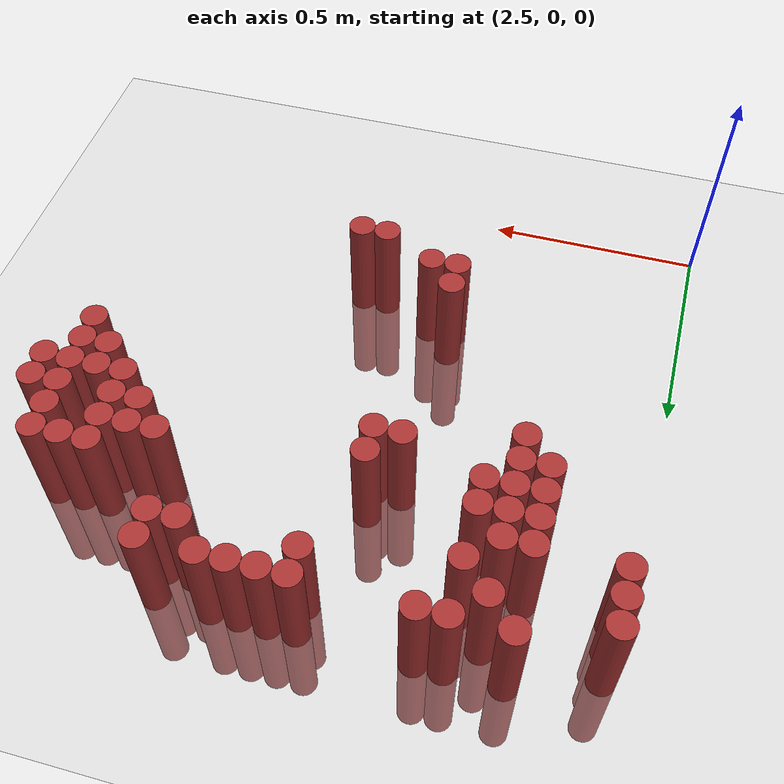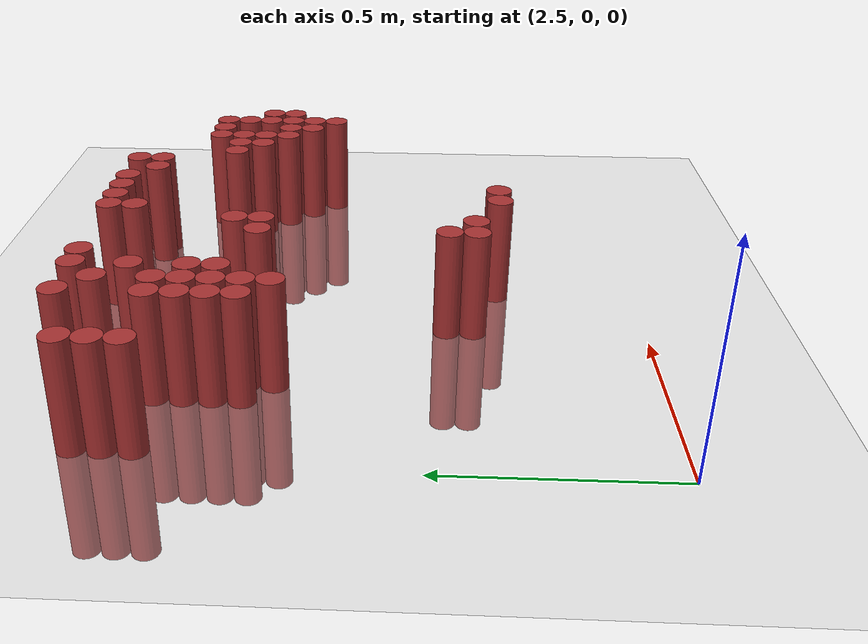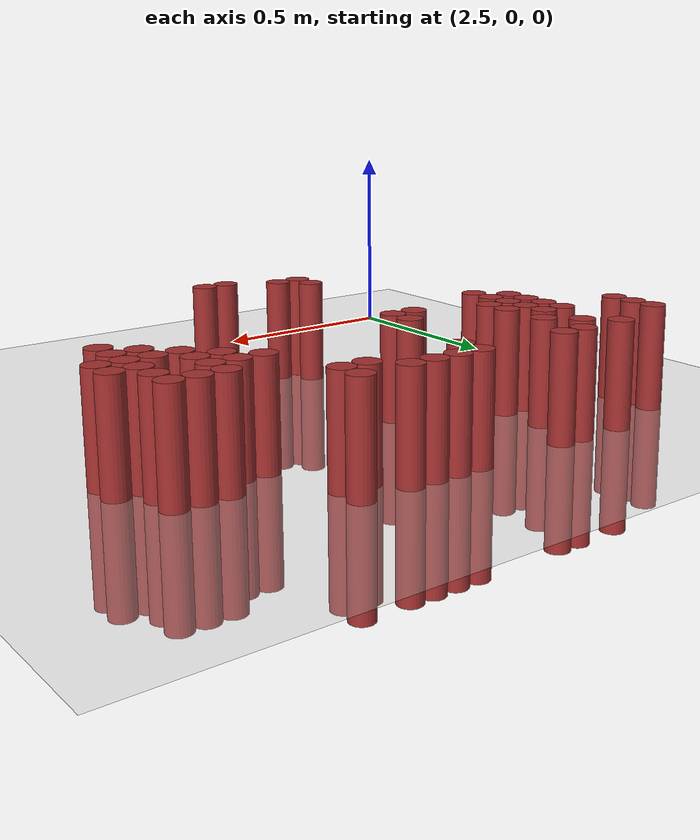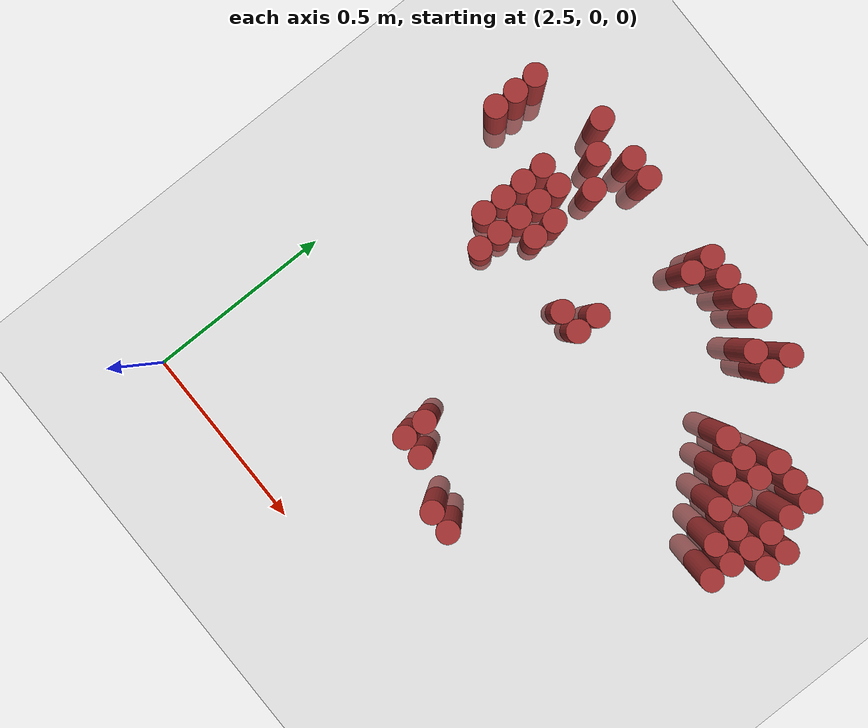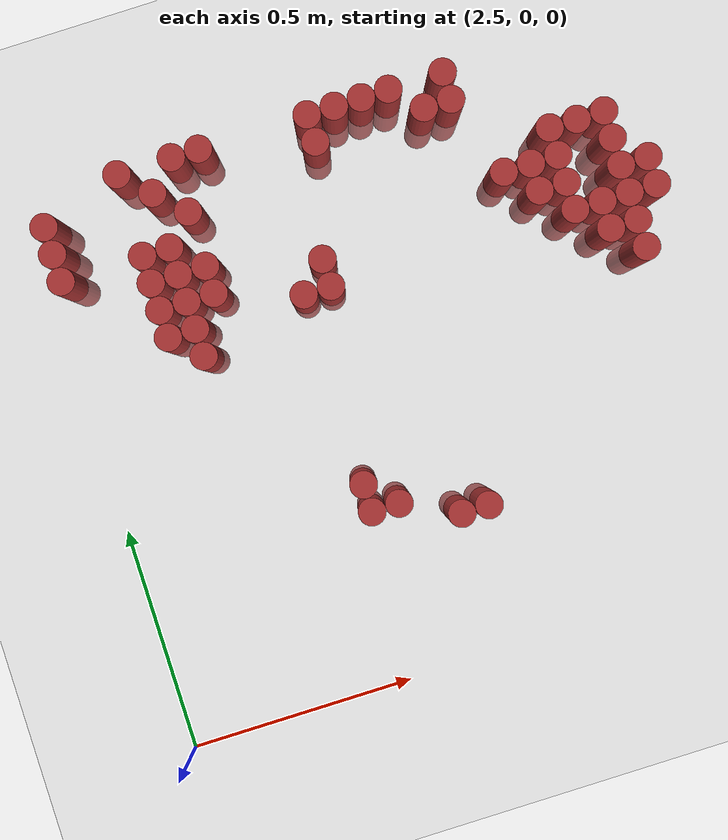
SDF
<sdf version="1.6">
 <world name="default">
  <model name="ground_plane">
   <static>1</static>
   <link name="link">
    <collision name="collision">
     <geometry><plane><normal>0 0 1</normal><size>100 100</size></plane></geometry>
     <surface><friction><ode><mu>100</mu><mu2>50</mu2></ode></friction></surface>
    </collision>
    <visual name="visual">
     <cast_shadows>0</cast_shadows>
     <geometry><plane><normal>0 0 1</normal><size>100 100</size></plane></geometry>
     <material>
      <script><uri>file://media/materials/scripts/gazebo.material</uri><name>Gazebo/Grey</name></script>
     </material>
    </visual>
   </link>
  </model>
  <model name="unit_cylinder_177">
   <static>1</static>
   <pose>2.730000 1.230000 0.000000 0.000000 0.000000 0.000000</pose>
   <link name="link">
    <inertial>
     <mass>1</mass>
     <inertia><ixx>0.145833</ixx><ixy>0</ixy><ixz>0</ixz><iyy>0.145833</iyy><iyz>0</iyz><izz>0.125</izz></inertia>
    </inertial>
    <collision name="collision">
     <geometry><cylinder><radius>0.030000</radius><length>0.5</length></cylinder></geometry>
    </collision>
    <visual name="visual">
     <geometry><cylinder><radius>0.030000</radius><length>0.5</length></cylinder></geometry>
     <material>
      <ambient>0.648000 0.192000 0.192000 1</ambient>
      <diffuse>0.648000 0.192000 0.192000 1</diffuse>
     </material>
     <material>
      <script><name>Gazebo/Grey</name><uri>file://media/materials/scripts/gazebo.material</uri></script>
     </material>
    </visual>
   </link>
  </model>
  <model name="unit_cylinder_178">
   <static>1</static>
   <pose>2.850000 1.230000 0.000000 0.000000 0.000000 0.000000</pose>
   <link name="link">
    <inertial>
     <mass>1</mass>
     <inertia><ixx>0.145833</ixx><ixy>0</ixy><ixz>0</ixz><iyy>0.145833</iyy><iyz>0</iyz><izz>0.125</izz></inertia>
    </inertial>
    <collision name="collision">
     <geometry><cylinder><radius>0.030000</radius><length>0.5</length></cylinder></geometry>
    </collision>
    <visual name="visual">
     <geometry><cylinder><radius>0.030000</radius><length>0.5</length></cylinder></geometry>
     <material>
      <ambient>0.648000 0.192000 0.192000 1</ambient>
      <diffuse>0.648000 0.192000 0.192000 1</diffuse>
     </material>
     <material>
      <script><name>Gazebo/Grey</name><uri>file://media/materials/scripts/gazebo.material</uri></script>
     </material>
    </visual>
   </link>
  </model>
  <model name="unit_cylinder_179">
   <static>1</static>
   <pose>2.910000 1.230000 0.000000 0.000000 0.000000 0.000000</pose>
   <link name="link">
    <inertial>
     <mass>1</mass>
     <inertia><ixx>0.145833</ixx><ixy>0</ixy><ixz>0</ixz><iyy>0.145833</iyy><iyz>0</iyz><izz>0.125</izz></inertia>
    </inertial>
    <collision name="collision">
     <geometry><cylinder><radius>0.030000</radius><length>0.5</length></cylinder></geometry>
    </collision>
    <visual name="visual">
     <geometry><cylinder><radius>0.030000</radius><length>0.5</length></cylinder></geometry>
     <material>
      <ambient>0.648000 0.192000 0.192000 1</ambient>
      <diffuse>0.648000 0.192000 0.192000 1</diffuse>
     </material>
     <material>
      <script><name>Gazebo/Grey</name><uri>file://media/materials/scripts/gazebo.material</uri></script>
     </material>
    </visual>
   </link>
  </model>
  <model name="unit_cylinder_180">
   <static>1</static>
   <pose>3.150000 1.230000 0.000000 0.000000 0.000000 0.000000</pose>
   <link name="link">
    <inertial>
     <mass>1</mass>
     <inertia><ixx>0.145833</ixx><ixy>0</ixy><ixz>0</ixz><iyy>0.145833</iyy><iyz>0</iyz><izz>0.125</izz></inertia>
    </inertial>
    <collision name="collision">
     <geometry><cylinder><radius>0.030000</radius><length>0.5</length></cylinder></geometry>
    </collision>
    <visual name="visual">
     <geometry><cylinder><radius>0.030000</radius><length>0.5</length></cylinder></geometry>
     <material>
      <ambient>0.648000 0.192000 0.192000 1</ambient>
      <diffuse>0.648000 0.192000 0.192000 1</diffuse>
     </material>
     <material>
      <script><name>Gazebo/Grey</name><uri>file://media/materials/scripts/gazebo.material</uri></script>
     </material>
    </visual>
   </link>
  </model>
  <model name="unit_cylinder_181">
   <static>1</static>
   <pose>3.210000 1.230000 0.000000 0.000000 0.000000 0.000000</pose>
   <link name="link">
    <inertial>
     <mass>1</mass>
     <inertia><ixx>0.145833</ixx><ixy>0</ixy><ixz>0</ixz><iyy>0.145833</iyy><iyz>0</iyz><izz>0.125</izz></inertia>
    </inertial>
    <collision name="collision">
     <geometry><cylinder><radius>0.030000</radius><length>0.5</length></cylinder></geometry>
    </collision>
    <visual name="visual">
     <geometry><cylinder><radius>0.030000</radius><length>0.5</length></cylinder></geometry>
     <material>
      <ambient>0.648000 0.192000 0.192000 1</ambient>
      <diffuse>0.648000 0.192000 0.192000 1</diffuse>
     </material>
     <material>
      <script><name>Gazebo/Grey</name><uri>file://media/materials/scripts/gazebo.material</uri></script>
     </material>
    </visual>
   </link>
  </model>
  <model name="unit_cylinder_182">
   <static>1</static>
   <pose>3.270000 1.230000 0.000000 0.000000 0.000000 0.000000</pose>
   <link name="link">
    <inertial>
     <mass>1</mass>
     <inertia><ixx>0.145833</ixx><ixy>0</ixy><ixz>0</ixz><iyy>0.145833</iyy><iyz>0</iyz><izz>0.125</izz></inertia>
    </inertial>
    <collision name="collision">
     <geometry><cylinder><radius>0.030000</radius><length>0.5</length></cylinder></geometry>
    </collision>
    <visual name="visual">
     <geometry><cylinder><radius>0.030000</radius><length>0.5</length></cylinder></geometry>
     <material>
      <ambient>0.648000 0.192000 0.192000 1</ambient>
      <diffuse>0.648000 0.192000 0.192000 1</diffuse>
     </material>
     <material>
      <script><name>Gazebo/Grey</name><uri>file://media/materials/scripts/gazebo.material</uri></script>
     </material>
    </visual>
   </link>
  </model>
  <model name="unit_cylinder_183">
   <static>1</static>
   <pose>3.330000 1.230000 0.000000 0.000000 0.000000 0.000000</pose>
   <link name="link">
    <inertial>
     <mass>1</mass>
     <inertia><ixx>0.145833</ixx><ixy>0</ixy><ixz>0</ixz><iyy>0.145833</iyy><iyz>0</iyz><izz>0.125</izz></inertia>
    </inertial>
    <collision name="collision">
     <geometry><cylinder><radius>0.030000</radius><length>0.5</length></cylinder></geometry>
    </collision>
    <visual name="visual">
     <geometry><cylinder><radius>0.030000</radius><length>0.5</length></cylinder></geometry>
     <material>
      <ambient>0.648000 0.192000 0.192000 1</ambient>
      <diffuse>0.648000 0.192000 0.192000 1</diffuse>
     </material>
     <material>
      <script><name>Gazebo/Grey</name><uri>file://media/materials/scripts/gazebo.material</uri></script>
     </material>
    </visual>
   </link>
  </model>
  <model name="unit_cylinder_184">
   <static>1</static>
   <pose>3.450000 1.230000 0.000000 0.000000 0.000000 0.000000</pose>
   <link name="link">
    <inertial>
     <mass>1</mass>
     <inertia><ixx>0.145833</ixx><ixy>0</ixy><ixz>0</ixz><iyy>0.145833</iyy><iyz>0</iyz><izz>0.125</izz></inertia>
    </inertial>
    <collision name="collision">
     <geometry><cylinder><radius>0.030000</radius><length>0.5</length></cylinder></geometry>
    </collision>
    <visual name="visual">
     <geometry><cylinder><radius>0.030000</radius><length>0.5</length></cylinder></geometry>
     <material>
      <ambient>0.648000 0.192000 0.192000 1</ambient>
      <diffuse>0.648000 0.192000 0.192000 1</diffuse>
     </material>
     <material>
      <script><name>Gazebo/Grey</name><uri>file://media/materials/scripts/gazebo.material</uri></script>
     </material>
    </visual>
   </link>
  </model>
  <model name="unit_cylinder_189">
   <static>1</static>
   <pose>2.550000 1.170000 0.000000 0.000000 0.000000 0.000000</pose>
   <link name="link">
    <inertial>
     <mass>1</mass>
     <inertia><ixx>0.145833</ixx><ixy>0</ixy><ixz>0</ixz><iyy>0.145833</iyy><iyz>0</iyz><izz>0.125</izz></inertia>
    </inertial>
    <collision name="collision">
     <geometry><cylinder><radius>0.030000</radius><length>0.5</length></cylinder></geometry>
    </collision>
    <visual name="visual">
     <geometry><cylinder><radius>0.030000</radius><length>0.5</length></cylinder></geometry>
     <material>
      <ambient>0.648000 0.192000 0.192000 1</ambient>
      <diffuse>0.648000 0.192000 0.192000 1</diffuse>
     </material>
     <material>
      <script><name>Gazebo/Grey</name><uri>file://media/materials/scripts/gazebo.material</uri></script>
     </material>
    </visual>
   </link>
  </model>
  <model name="unit_cylinder_190">
   <static>1</static>
   <pose>2.790000 1.170000 0.000000 0.000000 0.000000 0.000000</pose>
   <link name="link">
    <inertial>
     <mass>1</mass>
     <inertia><ixx>0.145833</ixx><ixy>0</ixy><ixz>0</ixz><iyy>0.145833</iyy><iyz>0</iyz><izz>0.125</izz></inertia>
    </inertial>
    <collision name="collision">
     <geometry><cylinder><radius>0.030000</radius><length>0.5</length></cylinder></geometry>
    </collision>
    <visual name="visual">
     <geometry><cylinder><radius>0.030000</radius><length>0.5</length></cylinder></geometry>
     <material>
      <ambient>0.648000 0.192000 0.192000 1</ambient>
      <diffuse>0.648000 0.192000 0.192000 1</diffuse>
     </material>
     <material>
      <script><name>Gazebo/Grey</name><uri>file://media/materials/scripts/gazebo.material</uri></script>
     </material>
    </visual>
   </link>
  </model>
  <model name="unit_cylinder_191">
   <static>1</static>
   <pose>3.150000 1.170000 0.000000 0.000000 0.000000 0.000000</pose>
   <link name="link">
    <inertial>
     <mass>1</mass>
     <inertia><ixx>0.145833</ixx><ixy>0</ixy><ixz>0</ixz><iyy>0.145833</iyy><iyz>0</iyz><izz>0.125</izz></inertia>
    </inertial>
    <collision name="collision">
     <geometry><cylinder><radius>0.030000</radius><length>0.5</length></cylinder></geometry>
    </collision>
    <visual name="visual">
     <geometry><cylinder><radius>0.030000</radius><length>0.5</length></cylinder></geometry>
     <material>
      <ambient>0.648000 0.192000 0.192000 1</ambient>
      <diffuse>0.648000 0.192000 0.192000 1</diffuse>
     </material>
     <material>
      <script><name>Gazebo/Grey</name><uri>file://media/materials/scripts/gazebo.material</uri></script>
     </material>
    </visual>
   </link>
  </model>
  <model name="unit_cylinder_192">
   <static>1</static>
   <pose>3.390000 1.170000 0.000000 0.000000 0.000000 0.000000</pose>
   <link name="link">
    <inertial>
     <mass>1</mass>
     <inertia><ixx>0.145833</ixx><ixy>0</ixy><ixz>0</ixz><iyy>0.145833</iyy><iyz>0</iyz><izz>0.125</izz></inertia>
    </inertial>
    <collision name="collision">
     <geometry><cylinder><radius>0.030000</radius><length>0.5</length></cylinder></geometry>
    </collision>
    <visual name="visual">
     <geometry><cylinder><radius>0.030000</radius><length>0.5</length></cylinder></geometry>
     <material>
      <ambient>0.648000 0.192000 0.192000 1</ambient>
      <diffuse>0.648000 0.192000 0.192000 1</diffuse>
     </material>
     <material>
      <script><name>Gazebo/Grey</name><uri>file://media/materials/scripts/gazebo.material</uri></script>
     </material>
    </visual>
   </link>
  </model>
  <model name="unit_cylinder_193">
   <static>1</static>
   <pose>3.450000 1.170000 0.000000 0.000000 0.000000 0.000000</pose>
   <link name="link">
    <inertial>
     <mass>1</mass>
     <inertia><ixx>0.145833</ixx><ixy>0</ixy><ixz>0</ixz><iyy>0.145833</iyy><iyz>0</iyz><izz>0.125</izz></inertia>
    </inertial>
    <collision name="collision">
     <geometry><cylinder><radius>0.030000</radius><length>0.5</length></cylinder></geometry>
    </collision>
    <visual name="visual">
     <geometry><cylinder><radius>0.030000</radius><length>0.5</length></cylinder></geometry>
     <material>
      <ambient>0.648000 0.192000 0.192000 1</ambient>
      <diffuse>0.648000 0.192000 0.192000 1</diffuse>
     </material>
     <material>
      <script><name>Gazebo/Grey</name><uri>file://media/materials/scripts/gazebo.material</uri></script>
     </material>
    </visual>
   </link>
  </model>
  <model name="unit_cylinder_197">
   <static>1</static>
   <pose>2.550000 1.110000 0.000000 0.000000 0.000000 0.000000</pose>
   <link name="link">
    <inertial>
     <mass>1</mass>
     <inertia><ixx>0.145833</ixx><ixy>0</ixy><ixz>0</ixz><iyy>0.145833</iyy><iyz>0</iyz><izz>0.125</izz></inertia>
    </inertial>
    <collision name="collision">
     <geometry><cylinder><radius>0.030000</radius><length>0.5</length></cylinder></geometry>
    </collision>
    <visual name="visual">
     <geometry><cylinder><radius>0.030000</radius><length>0.5</length></cylinder></geometry>
     <material>
      <ambient>0.648000 0.192000 0.192000 1</ambient>
      <diffuse>0.648000 0.192000 0.192000 1</diffuse>
     </material>
     <material>
      <script><name>Gazebo/Grey</name><uri>file://media/materials/scripts/gazebo.material</uri></script>
     </material>
    </visual>
   </link>
  </model>
  <model name="unit_cylinder_198">
   <static>1</static>
   <pose>2.850000 1.110000 0.000000 0.000000 0.000000 0.000000</pose>
   <link name="link">
    <inertial>
     <mass>1</mass>
     <inertia><ixx>0.145833</ixx><ixy>0</ixy><ixz>0</ixz><iyy>0.145833</iyy><iyz>0</iyz><izz>0.125</izz></inertia>
    </inertial>
    <collision name="collision">
     <geometry><cylinder><radius>0.030000</radius><length>0.5</length></cylinder></geometry>
    </collision>
    <visual name="visual">
     <geometry><cylinder><radius>0.030000</radius><length>0.5</length></cylinder></geometry>
     <material>
      <ambient>0.648000 0.192000 0.192000 1</ambient>
      <diffuse>0.648000 0.192000 0.192000 1</diffuse>
     </material>
     <material>
      <script><name>Gazebo/Grey</name><uri>file://media/materials/scripts/gazebo.material</uri></script>
     </material>
    </visual>
   </link>
  </model>
  <model name="unit_cylinder_201">
   <static>1</static>
   <pose>2.550000 1.050000 0.000000 0.000000 0.000000 0.000000</pose>
   <link name="link">
    <inertial>
     <mass>1</mass>
     <inertia><ixx>0.145833</ixx><ixy>0</ixy><ixz>0</ixz><iyy>0.145833</iyy><iyz>0</iyz><izz>0.125</izz></inertia>
    </inertial>
    <collision name="collision">
     <geometry><cylinder><radius>0.030000</radius><length>0.5</length></cylinder></geometry>
    </collision>
    <visual name="visual">
     <geometry><cylinder><radius>0.030000</radius><length>0.5</length></cylinder></geometry>
     <material>
      <ambient>0.648000 0.192000 0.192000 1</ambient>
      <diffuse>0.648000 0.192000 0.192000 1</diffuse>
     </material>
     <material>
      <script><name>Gazebo/Grey</name><uri>file://media/materials/scripts/gazebo.material</uri></script>
     </material>
    </visual>
   </link>
  </model>
  <model name="unit_cylinder_202">
   <static>1</static>
   <pose>2.730000 1.050000 0.000000 0.000000 0.000000 0.000000</pose>
   <link name="link">
    <inertial>
     <mass>1</mass>
     <inertia><ixx>0.145833</ixx><ixy>0</ixy><ixz>0</ixz><iyy>0.145833</iyy><iyz>0</iyz><izz>0.125</izz></inertia>
    </inertial>
    <collision name="collision">
     <geometry><cylinder><radius>0.030000</radius><length>0.5</length></cylinder></geometry>
    </collision>
    <visual name="visual">
     <geometry><cylinder><radius>0.030000</radius><length>0.5</length></cylinder></geometry>
     <material>
      <ambient>0.648000 0.192000 0.192000 1</ambient>
      <diffuse>0.648000 0.192000 0.192000 1</diffuse>
     </material>
     <material>
      <script><name>Gazebo/Grey</name><uri>file://media/materials/scripts/gazebo.material</uri></script>
     </material>
    </visual>
   </link>
  </model>
  <model name="unit_cylinder_203">
   <static>1</static>
   <pose>2.790000 1.050000 0.000000 0.000000 0.000000 0.000000</pose>
   <link name="link">
    <inertial>
     <mass>1</mass>
     <inertia><ixx>0.145833</ixx><ixy>0</ixy><ixz>0</ixz><iyy>0.145833</iyy><iyz>0</iyz><izz>0.125</izz></inertia>
    </inertial>
    <collision name="collision">
     <geometry><cylinder><radius>0.030000</radius><length>0.5</length></cylinder></geometry>
    </collision>
    <visual name="visual">
     <geometry><cylinder><radius>0.030000</radius><length>0.5</length></cylinder></geometry>
     <material>
      <ambient>0.648000 0.192000 0.192000 1</ambient>
      <diffuse>0.648000 0.192000 0.192000 1</diffuse>
     </material>
     <material>
      <script><name>Gazebo/Grey</name><uri>file://media/materials/scripts/gazebo.material</uri></script>
     </material>
    </visual>
   </link>
  </model>
  <model name="unit_cylinder_204">
   <static>1</static>
   <pose>3.630000 1.050000 0.000000 0.000000 0.000000 0.000000</pose>
   <link name="link">
    <inertial>
     <mass>1</mass>
     <inertia><ixx>0.145833</ixx><ixy>0</ixy><ixz>0</ixz><iyy>0.145833</iyy><iyz>0</iyz><izz>0.125</izz></inertia>
    </inertial>
    <collision name="collision">
     <geometry><cylinder><radius>0.030000</radius><length>0.5</length></cylinder></geometry>
    </collision>
    <visual name="visual">
     <geometry><cylinder><radius>0.030000</radius><length>0.5</length></cylinder></geometry>
     <material>
      <ambient>0.648000 0.192000 0.192000 1</ambient>
      <diffuse>0.648000 0.192000 0.192000 1</diffuse>
     </material>
     <material>
      <script><name>Gazebo/Grey</name><uri>file://media/materials/scripts/gazebo.material</uri></script>
     </material>
    </visual>
   </link>
  </model>
  <model name="unit_cylinder_205">
   <static>1</static>
   <pose>3.690000 1.050000 0.000000 0.000000 0.000000 0.000000</pose>
   <link name="link">
    <inertial>
     <mass>1</mass>
     <inertia><ixx>0.145833</ixx><ixy>0</ixy><ixz>0</ixz><iyy>0.145833</iyy><iyz>0</iyz><izz>0.125</izz></inertia>
    </inertial>
    <collision name="collision">
     <geometry><cylinder><radius>0.030000</radius><length>0.5</length></cylinder></geometry>
    </collision>
    <visual name="visual">
     <geometry><cylinder><radius>0.030000</radius><length>0.5</length></cylinder></geometry>
     <material>
      <ambient>0.648000 0.192000 0.192000 1</ambient>
      <diffuse>0.648000 0.192000 0.192000 1</diffuse>
     </material>
     <material>
      <script><name>Gazebo/Grey</name><uri>file://media/materials/scripts/gazebo.material</uri></script>
     </material>
    </visual>
   </link>
  </model>
  <model name="unit_cylinder_206">
   <static>1</static>
   <pose>3.750000 1.050000 0.000000 0.000000 0.000000 0.000000</pose>
   <link name="link">
    <inertial>
     <mass>1</mass>
     <inertia><ixx>0.145833</ixx><ixy>0</ixy><ixz>0</ixz><iyy>0.145833</iyy><iyz>0</iyz><izz>0.125</izz></inertia>
    </inertial>
    <collision name="collision">
     <geometry><cylinder><radius>0.030000</radius><length>0.5</length></cylinder></geometry>
    </collision>
    <visual name="visual">
     <geometry><cylinder><radius>0.030000</radius><length>0.5</length></cylinder></geometry>
     <material>
      <ambient>0.648000 0.192000 0.192000 1</ambient>
      <diffuse>0.648000 0.192000 0.192000 1</diffuse>
     </material>
     <material>
      <script><name>Gazebo/Grey</name><uri>file://media/materials/scripts/gazebo.material</uri></script>
     </material>
    </visual>
   </link>
  </model>
  <model name="unit_cylinder_210">
   <static>1</static>
   <pose>2.730000 0.990000 0.000000 0.000000 0.000000 0.000000</pose>
   <link name="link">
    <inertial>
     <mass>1</mass>
     <inertia><ixx>0.145833</ixx><ixy>0</ixy><ixz>0</ixz><iyy>0.145833</iyy><iyz>0</iyz><izz>0.125</izz></inertia>
    </inertial>
    <collision name="collision">
     <geometry><cylinder><radius>0.030000</radius><length>0.5</length></cylinder></geometry>
    </collision>
    <visual name="visual">
     <geometry><cylinder><radius>0.030000</radius><length>0.5</length></cylinder></geometry>
     <material>
      <ambient>0.648000 0.192000 0.192000 1</ambient>
      <diffuse>0.648000 0.192000 0.192000 1</diffuse>
     </material>
     <material>
      <script><name>Gazebo/Grey</name><uri>file://media/materials/scripts/gazebo.material</uri></script>
     </material>
    </visual>
   </link>
  </model>
  <model name="unit_cylinder_211">
   <static>1</static>
   <pose>2.790000 0.990000 0.000000 0.000000 0.000000 0.000000</pose>
   <link name="link">
    <inertial>
     <mass>1</mass>
     <inertia><ixx>0.145833</ixx><ixy>0</ixy><ixz>0</ixz><iyy>0.145833</iyy><iyz>0</iyz><izz>0.125</izz></inertia>
    </inertial>
    <collision name="collision">
     <geometry><cylinder><radius>0.030000</radius><length>0.5</length></cylinder></geometry>
    </collision>
    <visual name="visual">
     <geometry><cylinder><radius>0.030000</radius><length>0.5</length></cylinder></geometry>
     <material>
      <ambient>0.648000 0.192000 0.192000 1</ambient>
      <diffuse>0.648000 0.192000 0.192000 1</diffuse>
     </material>
     <material>
      <script><name>Gazebo/Grey</name><uri>file://media/materials/scripts/gazebo.material</uri></script>
     </material>
    </visual>
   </link>
  </model>
  <model name="unit_cylinder_212">
   <static>1</static>
   <pose>2.850000 0.990000 0.000000 0.000000 0.000000 0.000000</pose>
   <link name="link">
    <inertial>
     <mass>1</mass>
     <inertia><ixx>0.145833</ixx><ixy>0</ixy><ixz>0</ixz><iyy>0.145833</iyy><iyz>0</iyz><izz>0.125</izz></inertia>
    </inertial>
    <collision name="collision">
     <geometry><cylinder><radius>0.030000</radius><length>0.5</length></cylinder></geometry>
    </collision>
    <visual name="visual">
     <geometry><cylinder><radius>0.030000</radius><length>0.5</length></cylinder></geometry>
     <material>
      <ambient>0.648000 0.192000 0.192000 1</ambient>
      <diffuse>0.648000 0.192000 0.192000 1</diffuse>
     </material>
     <material>
      <script><name>Gazebo/Grey</name><uri>file://media/materials/scripts/gazebo.material</uri></script>
     </material>
    </visual>
   </link>
  </model>
  <model name="unit_cylinder_213">
   <static>1</static>
   <pose>3.510000 0.990000 0.000000 0.000000 0.000000 0.000000</pose>
   <link name="link">
    <inertial>
     <mass>1</mass>
     <inertia><ixx>0.145833</ixx><ixy>0</ixy><ixz>0</ixz><iyy>0.145833</iyy><iyz>0</iyz><izz>0.125</izz></inertia>
    </inertial>
    <collision name="collision">
     <geometry><cylinder><radius>0.030000</radius><length>0.5</length></cylinder></geometry>
    </collision>
    <visual name="visual">
     <geometry><cylinder><radius>0.030000</radius><length>0.5</length></cylinder></geometry>
     <material>
      <ambient>0.648000 0.192000 0.192000 1</ambient>
      <diffuse>0.648000 0.192000 0.192000 1</diffuse>
     </material>
     <material>
      <script><name>Gazebo/Grey</name><uri>file://media/materials/scripts/gazebo.material</uri></script>
     </material>
    </visual>
   </link>
  </model>
  <model name="unit_cylinder_214">
   <static>1</static>
   <pose>3.570000 0.990000 0.000000 0.000000 0.000000 0.000000</pose>
   <link name="link">
    <inertial>
     <mass>1</mass>
     <inertia><ixx>0.145833</ixx><ixy>0</ixy><ixz>0</ixz><iyy>0.145833</iyy><iyz>0</iyz><izz>0.125</izz></inertia>
    </inertial>
    <collision name="collision">
     <geometry><cylinder><radius>0.030000</radius><length>0.5</length></cylinder></geometry>
    </collision>
    <visual name="visual">
     <geometry><cylinder><radius>0.030000</radius><length>0.5</length></cylinder></geometry>
     <material>
      <ambient>0.648000 0.192000 0.192000 1</ambient>
      <diffuse>0.648000 0.192000 0.192000 1</diffuse>
     </material>
     <material>
      <script><name>Gazebo/Grey</name><uri>file://media/materials/scripts/gazebo.material</uri></script>
     </material>
    </visual>
   </link>
  </model>
  <model name="unit_cylinder_215">
   <static>1</static>
   <pose>3.630000 0.990000 0.000000 0.000000 0.000000 0.000000</pose>
   <link name="link">
    <inertial>
     <mass>1</mass>
     <inertia><ixx>0.145833</ixx><ixy>0</ixy><ixz>0</ixz><iyy>0.145833</iyy><iyz>0</iyz><izz>0.125</izz></inertia>
    </inertial>
    <collision name="collision">
     <geometry><cylinder><radius>0.030000</radius><length>0.5</length></cylinder></geometry>
    </collision>
    <visual name="visual">
     <geometry><cylinder><radius>0.030000</radius><length>0.5</length></cylinder></geometry>
     <material>
      <ambient>0.648000 0.192000 0.192000 1</ambient>
      <diffuse>0.648000 0.192000 0.192000 1</diffuse>
     </material>
     <material>
      <script><name>Gazebo/Grey</name><uri>file://media/materials/scripts/gazebo.material</uri></script>
     </material>
    </visual>
   </link>
  </model>
  <model name="unit_cylinder_216">
   <static>1</static>
   <pose>3.750000 0.990000 0.000000 0.000000 0.000000 0.000000</pose>
   <link name="link">
    <inertial>
     <mass>1</mass>
     <inertia><ixx>0.145833</ixx><ixy>0</ixy><ixz>0</ixz><iyy>0.145833</iyy><iyz>0</iyz><izz>0.125</izz></inertia>
    </inertial>
    <collision name="collision">
     <geometry><cylinder><radius>0.030000</radius><length>0.5</length></cylinder></geometry>
    </collision>
    <visual name="visual">
     <geometry><cylinder><radius>0.030000</radius><length>0.5</length></cylinder></geometry>
     <material>
      <ambient>0.648000 0.192000 0.192000 1</ambient>
      <diffuse>0.648000 0.192000 0.192000 1</diffuse>
     </material>
     <material>
      <script><name>Gazebo/Grey</name><uri>file://media/materials/scripts/gazebo.material</uri></script>
     </material>
    </visual>
   </link>
  </model>
  <model name="unit_cylinder_219">
   <static>1</static>
   <pose>2.730000 0.930000 0.000000 0.000000 0.000000 0.000000</pose>
   <link name="link">
    <inertial>
     <mass>1</mass>
     <inertia><ixx>0.145833</ixx><ixy>0</ixy><ixz>0</ixz><iyy>0.145833</iyy><iyz>0</iyz><izz>0.125</izz></inertia>
    </inertial>
    <collision name="collision">
     <geometry><cylinder><radius>0.030000</radius><length>0.5</length></cylinder></geometry>
    </collision>
    <visual name="visual">
     <geometry><cylinder><radius>0.030000</radius><length>0.5</length></cylinder></geometry>
     <material>
      <ambient>0.648000 0.192000 0.192000 1</ambient>
      <diffuse>0.648000 0.192000 0.192000 1</diffuse>
     </material>
     <material>
      <script><name>Gazebo/Grey</name><uri>file://media/materials/scripts/gazebo.material</uri></script>
     </material>
    </visual>
   </link>
  </model>
  <model name="unit_cylinder_220">
   <static>1</static>
   <pose>2.790000 0.930000 0.000000 0.000000 0.000000 0.000000</pose>
   <link name="link">
    <inertial>
     <mass>1</mass>
     <inertia><ixx>0.145833</ixx><ixy>0</ixy><ixz>0</ixz><iyy>0.145833</iyy><iyz>0</iyz><izz>0.125</izz></inertia>
    </inertial>
    <collision name="collision">
     <geometry><cylinder><radius>0.030000</radius><length>0.5</length></cylinder></geometry>
    </collision>
    <visual name="visual">
     <geometry><cylinder><radius>0.030000</radius><length>0.5</length></cylinder></geometry>
     <material>
      <ambient>0.648000 0.192000 0.192000 1</ambient>
      <diffuse>0.648000 0.192000 0.192000 1</diffuse>
     </material>
     <material>
      <script><name>Gazebo/Grey</name><uri>file://media/materials/scripts/gazebo.material</uri></script>
     </material>
    </visual>
   </link>
  </model>
  <model name="unit_cylinder_221">
   <static>1</static>
   <pose>2.850000 0.930000 0.000000 0.000000 0.000000 0.000000</pose>
   <link name="link">
    <inertial>
     <mass>1</mass>
     <inertia><ixx>0.145833</ixx><ixy>0</ixy><ixz>0</ixz><iyy>0.145833</iyy><iyz>0</iyz><izz>0.125</izz></inertia>
    </inertial>
    <collision name="collision">
     <geometry><cylinder><radius>0.030000</radius><length>0.5</length></cylinder></geometry>
    </collision>
    <visual name="visual">
     <geometry><cylinder><radius>0.030000</radius><length>0.5</length></cylinder></geometry>
     <material>
      <ambient>0.648000 0.192000 0.192000 1</ambient>
      <diffuse>0.648000 0.192000 0.192000 1</diffuse>
     </material>
     <material>
      <script><name>Gazebo/Grey</name><uri>file://media/materials/scripts/gazebo.material</uri></script>
     </material>
    </visual>
   </link>
  </model>
  <model name="unit_cylinder_222">
   <static>1</static>
   <pose>3.090000 0.930000 0.000000 0.000000 0.000000 0.000000</pose>
   <link name="link">
    <inertial>
     <mass>1</mass>
     <inertia><ixx>0.145833</ixx><ixy>0</ixy><ixz>0</ixz><iyy>0.145833</iyy><iyz>0</iyz><izz>0.125</izz></inertia>
    </inertial>
    <collision name="collision">
     <geometry><cylinder><radius>0.030000</radius><length>0.5</length></cylinder></geometry>
    </collision>
    <visual name="visual">
     <geometry><cylinder><radius>0.030000</radius><length>0.5</length></cylinder></geometry>
     <material>
      <ambient>0.648000 0.192000 0.192000 1</ambient>
      <diffuse>0.648000 0.192000 0.192000 1</diffuse>
     </material>
     <material>
      <script><name>Gazebo/Grey</name><uri>file://media/materials/scripts/gazebo.material</uri></script>
     </material>
    </visual>
   </link>
  </model>
  <model name="unit_cylinder_223">
   <static>1</static>
   <pose>3.570000 0.930000 0.000000 0.000000 0.000000 0.000000</pose>
   <link name="link">
    <inertial>
     <mass>1</mass>
     <inertia><ixx>0.145833</ixx><ixy>0</ixy><ixz>0</ixz><iyy>0.145833</iyy><iyz>0</iyz><izz>0.125</izz></inertia>
    </inertial>
    <collision name="collision">
     <geometry><cylinder><radius>0.030000</radius><length>0.5</length></cylinder></geometry>
    </collision>
    <visual name="visual">
     <geometry><cylinder><radius>0.030000</radius><length>0.5</length></cylinder></geometry>
     <material>
      <ambient>0.648000 0.192000 0.192000 1</ambient>
      <diffuse>0.648000 0.192000 0.192000 1</diffuse>
     </material>
     <material>
      <script><name>Gazebo/Grey</name><uri>file://media/materials/scripts/gazebo.material</uri></script>
     </material>
    </visual>
   </link>
  </model>
  <model name="unit_cylinder_224">
   <static>1</static>
   <pose>3.630000 0.930000 0.000000 0.000000 0.000000 0.000000</pose>
   <link name="link">
    <inertial>
     <mass>1</mass>
     <inertia><ixx>0.145833</ixx><ixy>0</ixy><ixz>0</ixz><iyy>0.145833</iyy><iyz>0</iyz><izz>0.125</izz></inertia>
    </inertial>
    <collision name="collision">
     <geometry><cylinder><radius>0.030000</radius><length>0.5</length></cylinder></geometry>
    </collision>
    <visual name="visual">
     <geometry><cylinder><radius>0.030000</radius><length>0.5</length></cylinder></geometry>
     <material>
      <ambient>0.648000 0.192000 0.192000 1</ambient>
      <diffuse>0.648000 0.192000 0.192000 1</diffuse>
     </material>
     <material>
      <script><name>Gazebo/Grey</name><uri>file://media/materials/scripts/gazebo.material</uri></script>
     </material>
    </visual>
   </link>
  </model>
  <model name="unit_cylinder_225">
   <static>1</static>
   <pose>3.750000 0.930000 0.000000 0.000000 0.000000 0.000000</pose>
   <link name="link">
    <inertial>
     <mass>1</mass>
     <inertia><ixx>0.145833</ixx><ixy>0</ixy><ixz>0</ixz><iyy>0.145833</iyy><iyz>0</iyz><izz>0.125</izz></inertia>
    </inertial>
    <collision name="collision">
     <geometry><cylinder><radius>0.030000</radius><length>0.5</length></cylinder></geometry>
    </collision>
    <visual name="visual">
     <geometry><cylinder><radius>0.030000</radius><length>0.5</length></cylinder></geometry>
     <material>
      <ambient>0.648000 0.192000 0.192000 1</ambient>
      <diffuse>0.648000 0.192000 0.192000 1</diffuse>
     </material>
     <material>
      <script><name>Gazebo/Grey</name><uri>file://media/materials/scripts/gazebo.material</uri></script>
     </material>
    </visual>
   </link>
  </model>
  <model name="unit_cylinder_226">
   <static>1</static>
   <pose>3.810000 0.930000 0.000000 0.000000 0.000000 0.000000</pose>
   <link name="link">
    <inertial>
     <mass>1</mass>
     <inertia><ixx>0.145833</ixx><ixy>0</ixy><ixz>0</ixz><iyy>0.145833</iyy><iyz>0</iyz><izz>0.125</izz></inertia>
    </inertial>
    <collision name="collision">
     <geometry><cylinder><radius>0.030000</radius><length>0.5</length></cylinder></geometry>
    </collision>
    <visual name="visual">
     <geometry><cylinder><radius>0.030000</radius><length>0.5</length></cylinder></geometry>
     <material>
      <ambient>0.648000 0.192000 0.192000 1</ambient>
      <diffuse>0.648000 0.192000 0.192000 1</diffuse>
     </material>
     <material>
      <script><name>Gazebo/Grey</name><uri>file://media/materials/scripts/gazebo.material</uri></script>
     </material>
    </visual>
   </link>
  </model>
  <model name="unit_cylinder_229">
   <static>1</static>
   <pose>2.730000 0.870000 0.000000 0.000000 0.000000 0.000000</pose>
   <link name="link">
    <inertial>
     <mass>1</mass>
     <inertia><ixx>0.145833</ixx><ixy>0</ixy><ixz>0</ixz><iyy>0.145833</iyy><iyz>0</iyz><izz>0.125</izz></inertia>
    </inertial>
    <collision name="collision">
     <geometry><cylinder><radius>0.030000</radius><length>0.5</length></cylinder></geometry>
    </collision>
    <visual name="visual">
     <geometry><cylinder><radius>0.030000</radius><length>0.5</length></cylinder></geometry>
     <material>
      <ambient>0.648000 0.192000 0.192000 1</ambient>
      <diffuse>0.648000 0.192000 0.192000 1</diffuse>
     </material>
     <material>
      <script><name>Gazebo/Grey</name><uri>file://media/materials/scripts/gazebo.material</uri></script>
     </material>
    </visual>
   </link>
  </model>
  <model name="unit_cylinder_230">
   <static>1</static>
   <pose>2.790000 0.870000 0.000000 0.000000 0.000000 0.000000</pose>
   <link name="link">
    <inertial>
     <mass>1</mass>
     <inertia><ixx>0.145833</ixx><ixy>0</ixy><ixz>0</ixz><iyy>0.145833</iyy><iyz>0</iyz><izz>0.125</izz></inertia>
    </inertial>
    <collision name="collision">
     <geometry><cylinder><radius>0.030000</radius><length>0.5</length></cylinder></geometry>
    </collision>
    <visual name="visual">
     <geometry><cylinder><radius>0.030000</radius><length>0.5</length></cylinder></geometry>
     <material>
      <ambient>0.648000 0.192000 0.192000 1</ambient>
      <diffuse>0.648000 0.192000 0.192000 1</diffuse>
     </material>
     <material>
      <script><name>Gazebo/Grey</name><uri>file://media/materials/scripts/gazebo.material</uri></script>
     </material>
    </visual>
   </link>
  </model>
  <model name="unit_cylinder_231">
   <static>1</static>
   <pose>3.030000 0.870000 0.000000 0.000000 0.000000 0.000000</pose>
   <link name="link">
    <inertial>
     <mass>1</mass>
     <inertia><ixx>0.145833</ixx><ixy>0</ixy><ixz>0</ixz><iyy>0.145833</iyy><iyz>0</iyz><izz>0.125</izz></inertia>
    </inertial>
    <collision name="collision">
     <geometry><cylinder><radius>0.030000</radius><length>0.5</length></cylinder></geometry>
    </collision>
    <visual name="visual">
     <geometry><cylinder><radius>0.030000</radius><length>0.5</length></cylinder></geometry>
     <material>
      <ambient>0.648000 0.192000 0.192000 1</ambient>
      <diffuse>0.648000 0.192000 0.192000 1</diffuse>
     </material>
     <material>
      <script><name>Gazebo/Grey</name><uri>file://media/materials/scripts/gazebo.material</uri></script>
     </material>
    </visual>
   </link>
  </model>
  <model name="unit_cylinder_232">
   <static>1</static>
   <pose>3.090000 0.870000 0.000000 0.000000 0.000000 0.000000</pose>
   <link name="link">
    <inertial>
     <mass>1</mass>
     <inertia><ixx>0.145833</ixx><ixy>0</ixy><ixz>0</ixz><iyy>0.145833</iyy><iyz>0</iyz><izz>0.125</izz></inertia>
    </inertial>
    <collision name="collision">
     <geometry><cylinder><radius>0.030000</radius><length>0.5</length></cylinder></geometry>
    </collision>
    <visual name="visual">
     <geometry><cylinder><radius>0.030000</radius><length>0.5</length></cylinder></geometry>
     <material>
      <ambient>0.648000 0.192000 0.192000 1</ambient>
      <diffuse>0.648000 0.192000 0.192000 1</diffuse>
     </material>
     <material>
      <script><name>Gazebo/Grey</name><uri>file://media/materials/scripts/gazebo.material</uri></script>
     </material>
    </visual>
   </link>
  </model>
  <model name="unit_cylinder_233">
   <static>1</static>
   <pose>3.630000 0.870000 0.000000 0.000000 0.000000 0.000000</pose>
   <link name="link">
    <inertial>
     <mass>1</mass>
     <inertia><ixx>0.145833</ixx><ixy>0</ixy><ixz>0</ixz><iyy>0.145833</iyy><iyz>0</iyz><izz>0.125</izz></inertia>
    </inertial>
    <collision name="collision">
     <geometry><cylinder><radius>0.030000</radius><length>0.5</length></cylinder></geometry>
    </collision>
    <visual name="visual">
     <geometry><cylinder><radius>0.030000</radius><length>0.5</length></cylinder></geometry>
     <material>
      <ambient>0.648000 0.192000 0.192000 1</ambient>
      <diffuse>0.648000 0.192000 0.192000 1</diffuse>
     </material>
     <material>
      <script><name>Gazebo/Grey</name><uri>file://media/materials/scripts/gazebo.material</uri></script>
     </material>
    </visual>
   </link>
  </model>
  <model name="unit_cylinder_234">
   <static>1</static>
   <pose>3.690000 0.870000 0.000000 0.000000 0.000000 0.000000</pose>
   <link name="link">
    <inertial>
     <mass>1</mass>
     <inertia><ixx>0.145833</ixx><ixy>0</ixy><ixz>0</ixz><iyy>0.145833</iyy><iyz>0</iyz><izz>0.125</izz></inertia>
    </inertial>
    <collision name="collision">
     <geometry><cylinder><radius>0.030000</radius><length>0.5</length></cylinder></geometry>
    </collision>
    <visual name="visual">
     <geometry><cylinder><radius>0.030000</radius><length>0.5</length></cylinder></geometry>
     <material>
      <ambient>0.648000 0.192000 0.192000 1</ambient>
      <diffuse>0.648000 0.192000 0.192000 1</diffuse>
     </material>
     <material>
      <script><name>Gazebo/Grey</name><uri>file://media/materials/scripts/gazebo.material</uri></script>
     </material>
    </visual>
   </link>
  </model>
  <model name="unit_cylinder_235">
   <static>1</static>
   <pose>3.750000 0.870000 0.000000 0.000000 0.000000 0.000000</pose>
   <link name="link">
    <inertial>
     <mass>1</mass>
     <inertia><ixx>0.145833</ixx><ixy>0</ixy><ixz>0</ixz><iyy>0.145833</iyy><iyz>0</iyz><izz>0.125</izz></inertia>
    </inertial>
    <collision name="collision">
     <geometry><cylinder><radius>0.030000</radius><length>0.5</length></cylinder></geometry>
    </collision>
    <visual name="visual">
     <geometry><cylinder><radius>0.030000</radius><length>0.5</length></cylinder></geometry>
     <material>
      <ambient>0.648000 0.192000 0.192000 1</ambient>
      <diffuse>0.648000 0.192000 0.192000 1</diffuse>
     </material>
     <material>
      <script><name>Gazebo/Grey</name><uri>file://media/materials/scripts/gazebo.material</uri></script>
     </material>
    </visual>
   </link>
  </model>
  <model name="unit_cylinder_236">
   <static>1</static>
   <pose>3.810000 0.870000 0.000000 0.000000 0.000000 0.000000</pose>
   <link name="link">
    <inertial>
     <mass>1</mass>
     <inertia><ixx>0.145833</ixx><ixy>0</ixy><ixz>0</ixz><iyy>0.145833</iyy><iyz>0</iyz><izz>0.125</izz></inertia>
    </inertial>
    <collision name="collision">
     <geometry><cylinder><radius>0.030000</radius><length>0.5</length></cylinder></geometry>
    </collision>
    <visual name="visual">
     <geometry><cylinder><radius>0.030000</radius><length>0.5</length></cylinder></geometry>
     <material>
      <ambient>0.648000 0.192000 0.192000 1</ambient>
      <diffuse>0.648000 0.192000 0.192000 1</diffuse>
     </material>
     <material>
      <script><name>Gazebo/Grey</name><uri>file://media/materials/scripts/gazebo.material</uri></script>
     </material>
    </visual>
   </link>
  </model>
  <model name="unit_cylinder_239">
   <static>1</static>
   <pose>2.790000 0.810000 0.000000 0.000000 0.000000 0.000000</pose>
   <link name="link">
    <inertial>
     <mass>1</mass>
     <inertia><ixx>0.145833</ixx><ixy>0</ixy><ixz>0</ixz><iyy>0.145833</iyy><iyz>0</iyz><izz>0.125</izz></inertia>
    </inertial>
    <collision name="collision">
     <geometry><cylinder><radius>0.030000</radius><length>0.5</length></cylinder></geometry>
    </collision>
    <visual name="visual">
     <geometry><cylinder><radius>0.030000</radius><length>0.5</length></cylinder></geometry>
     <material>
      <ambient>0.648000 0.192000 0.192000 1</ambient>
      <diffuse>0.648000 0.192000 0.192000 1</diffuse>
     </material>
     <material>
      <script><name>Gazebo/Grey</name><uri>file://media/materials/scripts/gazebo.material</uri></script>
     </material>
    </visual>
   </link>
  </model>
  <model name="unit_cylinder_240">
   <static>1</static>
   <pose>3.690000 0.810000 0.000000 0.000000 0.000000 0.000000</pose>
   <link name="link">
    <inertial>
     <mass>1</mass>
     <inertia><ixx>0.145833</ixx><ixy>0</ixy><ixz>0</ixz><iyy>0.145833</iyy><iyz>0</iyz><izz>0.125</izz></inertia>
    </inertial>
    <collision name="collision">
     <geometry><cylinder><radius>0.030000</radius><length>0.5</length></cylinder></geometry>
    </collision>
    <visual name="visual">
     <geometry><cylinder><radius>0.030000</radius><length>0.5</length></cylinder></geometry>
     <material>
      <ambient>0.648000 0.192000 0.192000 1</ambient>
      <diffuse>0.648000 0.192000 0.192000 1</diffuse>
     </material>
     <material>
      <script><name>Gazebo/Grey</name><uri>file://media/materials/scripts/gazebo.material</uri></script>
     </material>
    </visual>
   </link>
  </model>
  <model name="unit_cylinder_241">
   <static>1</static>
   <pose>3.750000 0.810000 0.000000 0.000000 0.000000 0.000000</pose>
   <link name="link">
    <inertial>
     <mass>1</mass>
     <inertia><ixx>0.145833</ixx><ixy>0</ixy><ixz>0</ixz><iyy>0.145833</iyy><iyz>0</iyz><izz>0.125</izz></inertia>
    </inertial>
    <collision name="collision">
     <geometry><cylinder><radius>0.030000</radius><length>0.5</length></cylinder></geometry>
    </collision>
    <visual name="visual">
     <geometry><cylinder><radius>0.030000</radius><length>0.5</length></cylinder></geometry>
     <material>
      <ambient>0.648000 0.192000 0.192000 1</ambient>
      <diffuse>0.648000 0.192000 0.192000 1</diffuse>
     </material>
     <material>
      <script><name>Gazebo/Grey</name><uri>file://media/materials/scripts/gazebo.material</uri></script>
     </material>
    </visual>
   </link>
  </model>
  <model name="unit_cylinder_245">
   <static>1</static>
   <pose>3.750000 0.750000 0.000000 0.000000 0.000000 0.000000</pose>
   <link name="link">
    <inertial>
     <mass>1</mass>
     <inertia><ixx>0.145833</ixx><ixy>0</ixy><ixz>0</ixz><iyy>0.145833</iyy><iyz>0</iyz><izz>0.125</izz></inertia>
    </inertial>
    <collision name="collision">
     <geometry><cylinder><radius>0.030000</radius><length>0.5</length></cylinder></geometry>
    </collision>
    <visual name="visual">
     <geometry><cylinder><radius>0.030000</radius><length>0.5</length></cylinder></geometry>
     <material>
      <ambient>0.648000 0.192000 0.192000 1</ambient>
      <diffuse>0.648000 0.192000 0.192000 1</diffuse>
     </material>
     <material>
      <script><name>Gazebo/Grey</name><uri>file://media/materials/scripts/gazebo.material</uri></script>
     </material>
    </visual>
   </link>
  </model>
  <model name="unit_cylinder_251">
   <static>1</static>
   <pose>3.030000 0.450000 0.000000 0.000000 0.000000 0.000000</pose>
   <link name="link">
    <inertial>
     <mass>1</mass>
     <inertia><ixx>0.145833</ixx><ixy>0</ixy><ixz>0</ixz><iyy>0.145833</iyy><iyz>0</iyz><izz>0.125</izz></inertia>
    </inertial>
    <collision name="collision">
     <geometry><cylinder><radius>0.030000</radius><length>0.5</length></cylinder></geometry>
    </collision>
    <visual name="visual">
     <geometry><cylinder><radius>0.030000</radius><length>0.5</length></cylinder></geometry>
     <material>
      <ambient>0.648000 0.192000 0.192000 1</ambient>
      <diffuse>0.648000 0.192000 0.192000 1</diffuse>
     </material>
     <material>
      <script><name>Gazebo/Grey</name><uri>file://media/materials/scripts/gazebo.material</uri></script>
     </material>
    </visual>
   </link>
  </model>
  <model name="unit_cylinder_252">
   <static>1</static>
   <pose>3.030000 0.390000 0.000000 0.000000 0.000000 0.000000</pose>
   <link name="link">
    <inertial>
     <mass>1</mass>
     <inertia><ixx>0.145833</ixx><ixy>0</ixy><ixz>0</ixz><iyy>0.145833</iyy><iyz>0</iyz><izz>0.125</izz></inertia>
    </inertial>
    <collision name="collision">
     <geometry><cylinder><radius>0.030000</radius><length>0.5</length></cylinder></geometry>
    </collision>
    <visual name="visual">
     <geometry><cylinder><radius>0.030000</radius><length>0.5</length></cylinder></geometry>
     <material>
      <ambient>0.648000 0.192000 0.192000 1</ambient>
      <diffuse>0.648000 0.192000 0.192000 1</diffuse>
     </material>
     <material>
      <script><name>Gazebo/Grey</name><uri>file://media/materials/scripts/gazebo.material</uri></script>
     </material>
    </visual>
   </link>
  </model>
  <model name="unit_cylinder_253">
   <static>1</static>
   <pose>3.090000 0.390000 0.000000 0.000000 0.000000 0.000000</pose>
   <link name="link">
    <inertial>
     <mass>1</mass>
     <inertia><ixx>0.145833</ixx><ixy>0</ixy><ixz>0</ixz><iyy>0.145833</iyy><iyz>0</iyz><izz>0.125</izz></inertia>
    </inertial>
    <collision name="collision">
     <geometry><cylinder><radius>0.030000</radius><length>0.5</length></cylinder></geometry>
    </collision>
    <visual name="visual">
     <geometry><cylinder><radius>0.030000</radius><length>0.5</length></cylinder></geometry>
     <material>
      <ambient>0.648000 0.192000 0.192000 1</ambient>
      <diffuse>0.648000 0.192000 0.192000 1</diffuse>
     </material>
     <material>
      <script><name>Gazebo/Grey</name><uri>file://media/materials/scripts/gazebo.material</uri></script>
     </material>
    </visual>
   </link>
  </model>
  <model name="unit_cylinder_258">
   <static>1</static>
   <pose>3.210000 0.330000 0.000000 0.000000 0.000000 0.000000</pose>
   <link name="link">
    <inertial>
     <mass>1</mass>
     <inertia><ixx>0.145833</ixx><ixy>0</ixy><ixz>0</ixz><iyy>0.145833</iyy><iyz>0</iyz><izz>0.125</izz></inertia>
    </inertial>
    <collision name="collision">
     <geometry><cylinder><radius>0.030000</radius><length>0.5</length></cylinder></geometry>
    </collision>
    <visual name="visual">
     <geometry><cylinder><radius>0.030000</radius><length>0.5</length></cylinder></geometry>
     <material>
      <ambient>0.648000 0.192000 0.192000 1</ambient>
      <diffuse>0.648000 0.192000 0.192000 1</diffuse>
     </material>
     <material>
      <script><name>Gazebo/Grey</name><uri>file://media/materials/scripts/gazebo.material</uri></script>
     </material>
    </visual>
   </link>
  </model>
  <model name="unit_cylinder_259">
   <static>1</static>
   <pose>3.270000 0.330000 0.000000 0.000000 0.000000 0.000000</pose>
   <link name="link">
    <inertial>
     <mass>1</mass>
     <inertia><ixx>0.145833</ixx><ixy>0</ixy><ixz>0</ixz><iyy>0.145833</iyy><iyz>0</iyz><izz>0.125</izz></inertia>
    </inertial>
    <collision name="collision">
     <geometry><cylinder><radius>0.030000</radius><length>0.5</length></cylinder></geometry>
    </collision>
    <visual name="visual">
     <geometry><cylinder><radius>0.030000</radius><length>0.5</length></cylinder></geometry>
     <material>
      <ambient>0.648000 0.192000 0.192000 1</ambient>
      <diffuse>0.648000 0.192000 0.192000 1</diffuse>
     </material>
     <material>
      <script><name>Gazebo/Grey</name><uri>file://media/materials/scripts/gazebo.material</uri></script>
     </material>
    </visual>
   </link>
  </model>
 </world>
</sdf>
